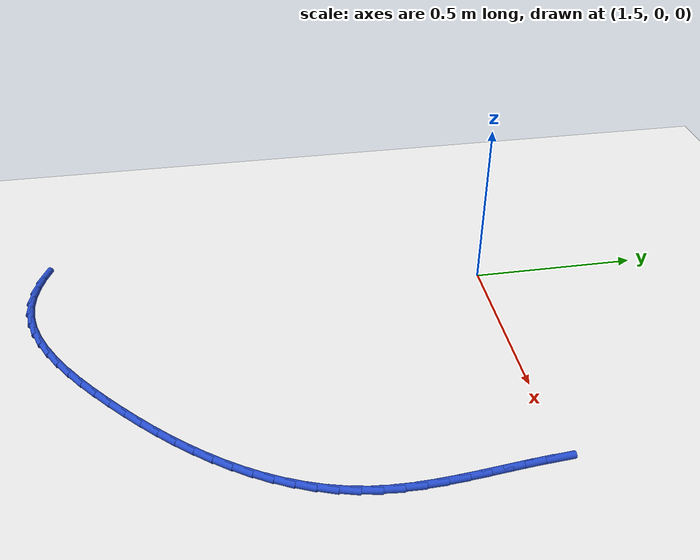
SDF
<sdf version="1.6">
 <world name="default">
  <model name="ground_plane">
   <static>1</static>
   <link name="link">
    <collision name="collision">
     <geometry><plane><normal>0 0 1</normal><size>100 100</size></plane></geometry>
     <surface><friction><ode><mu>100</mu><mu2>50</mu2></ode></friction></surface>
    </collision>
    <visual name="visual">
     <cast_shadows>0</cast_shadows>
     <geometry><plane><normal>0 0 1</normal><size>100 100</size></plane></geometry>
     <material>
      <script><uri>file://media/materials/scripts/gazebo.material</uri><name>Gazebo/WhiteGlow</name></script>
     </material>
    </visual>
   </link>
  </model>
  <model name="line">
   <link name="link_69">
    <pose>2.2679877125991506 -0.011577480466162785 0.01 0 1.57 -1.4976416497448057</pose>
    <collision name="collision">
     <geometry><cylinder><radius>0.01</radius><length>0.08</length></cylinder></geometry>
    </collision>
    <visual name="visual">
     <material>
      <script><name>Gazebo/Blue</name><uri>file://media/materials/scripts/gazebo.material</uri></script>
     </material>
     <geometry><cylinder><radius>0.01</radius><length>0.08</length></cylinder></geometry>
    </visual>
   </link>
   <link name="link_70">
    <pose>2.272039746151987 -0.06686858199269607 0.01 0 1.57 -1.4759544008531393</pose>
    <collision name="collision">
     <geometry><cylinder><radius>0.01</radius><length>0.08</length></cylinder></geometry>
    </collision>
    <visual name="visual">
     <material>
      <script><name>Gazebo/Blue</name><uri>file://media/materials/scripts/gazebo.material</uri></script>
     </material>
     <geometry><cylinder><radius>0.01</radius><length>0.08</length></cylinder></geometry>
    </visual>
   </link>
   <link name="link_71">
    <pose>2.277283311221189 -0.12199012914853248 0.01 0 1.57 -1.4662632966866773</pose>
    <collision name="collision">
     <geometry><cylinder><radius>0.01</radius><length>0.08</length></cylinder></geometry>
    </collision>
    <visual name="visual">
     <material>
      <script><name>Gazebo/Blue</name><uri>file://media/materials/scripts/gazebo.material</uri></script>
     </material>
     <geometry><cylinder><radius>0.01</radius><length>0.08</length></cylinder></geometry>
    </visual>
   </link>
   <link name="link_72">
    <pose>2.28303926705487 -0.17685293311595088 0.01 0 1.57 -1.4686270590977248</pose>
    <collision name="collision">
     <geometry><cylinder><radius>0.01</radius><length>0.08</length></cylinder></geometry>
    </collision>
    <visual name="visual">
     <material>
      <script><name>Gazebo/Blue</name><uri>file://media/materials/scripts/gazebo.material</uri></script>
     </material>
     <geometry><cylinder><radius>0.01</radius><length>0.08</length></cylinder></geometry>
    </visual>
   </link>
   <link name="link_73">
    <pose>2.288628472901146 -0.23136780507723054 0.01 0 1.57 -1.483307358704458</pose>
    <collision name="collision">
     <geometry><cylinder><radius>0.01</radius><length>0.08</length></cylinder></geometry>
    </collision>
    <visual name="visual">
     <material>
      <script><name>Gazebo/Blue</name><uri>file://media/materials/scripts/gazebo.material</uri></script>
     </material>
     <geometry><cylinder><radius>0.01</radius><length>0.08</length></cylinder></geometry>
    </visual>
   </link>
   <link name="link_74">
    <pose>2.2933717880081304 -0.2854455562146482 0.01 0 1.57 -1.5107714711309632</pose>
    <collision name="collision">
     <geometry><cylinder><radius>0.01</radius><length>0.08</length></cylinder></geometry>
    </collision>
    <visual name="visual">
     <material>
      <script><name>Gazebo/Blue</name><uri>file://media/materials/scripts/gazebo.material</uri></script>
     </material>
     <geometry><cylinder><radius>0.01</radius><length>0.08</length></cylinder></geometry>
    </visual>
   </link>
   <link name="link_75">
    <pose>2.2965900716239394 -0.338996997710483 0.01 0 1.57 -1.551641339065466</pose>
    <collision name="collision">
     <geometry><cylinder><radius>0.01</radius><length>0.08</length></cylinder></geometry>
    </collision>
    <visual name="visual">
     <material>
      <script><name>Gazebo/Blue</name><uri>file://media/materials/scripts/gazebo.material</uri></script>
     </material>
     <geometry><cylinder><radius>0.01</radius><length>0.08</length></cylinder></geometry>
    </visual>
   </link>
   <link name="link_76">
    <pose>2.297604182996687 -0.39193294074701357 0.01 0 1.57 1.5350245606710837</pose>
    <collision name="collision">
     <geometry><cylinder><radius>0.01</radius><length>0.08</length></cylinder></geometry>
    </collision>
    <visual name="visual">
     <material>
      <script><name>Gazebo/Blue</name><uri>file://media/materials/scripts/gazebo.material</uri></script>
     </material>
     <geometry><cylinder><radius>0.01</radius><length>0.08</length></cylinder></geometry>
    </visual>
   </link>
   <link name="link_77">
    <pose>2.295734981374488 -0.44416419650651817 0.01 0 1.57 1.4655887855317047</pose>
    <collision name="collision">
     <geometry><cylinder><radius>0.01</radius><length>0.08</length></cylinder></geometry>
    </collision>
    <visual name="visual">
     <material>
      <script><name>Gazebo/Blue</name><uri>file://media/materials/scripts/gazebo.material</uri></script>
     </material>
     <geometry><cylinder><radius>0.01</radius><length>0.08</length></cylinder></geometry>
    </visual>
   </link>
   <link name="link_78">
    <pose>2.2903033260054575 -0.4956015761712761 0.01 0 1.57 1.3839961442291087</pose>
    <collision name="collision">
     <geometry><cylinder><radius>0.01</radius><length>0.08</length></cylinder></geometry>
    </collision>
    <visual name="visual">
     <material>
      <script><name>Gazebo/Blue</name><uri>file://media/materials/scripts/gazebo.material</uri></script>
     </material>
     <geometry><cylinder><radius>0.01</radius><length>0.08</length></cylinder></geometry>
    </visual>
   </link>
   <link name="link_79">
    <pose>2.2807459964190695 -0.5461684681482974 0.01 0 1.57 1.302903133172674</pose>
    <collision name="collision">
     <geometry><cylinder><radius>0.01</radius><length>0.08</length></cylinder></geometry>
    </collision>
    <visual name="visual">
     <material>
      <script><name>Gazebo/Blue</name><uri>file://media/materials/scripts/gazebo.material</uri></script>
     </material>
     <geometry><cylinder><radius>0.01</radius><length>0.08</length></cylinder></geometry>
    </visual>
   </link>
   <link name="link_80">
    <pose>2.2671076911150916 -0.5958542193931708 0.01 0 1.57 1.2270118462953332</pose>
    <collision name="collision">
     <geometry><cylinder><radius>0.01</radius><length>0.08</length></cylinder></geometry>
    </collision>
    <visual name="visual">
     <material>
      <script><name>Gazebo/Blue</name><uri>file://media/materials/scripts/gazebo.material</uri></script>
     </material>
     <geometry><cylinder><radius>0.01</radius><length>0.08</length></cylinder></geometry>
    </visual>
   </link>
   <link name="link_81">
    <pose>2.2496317090352833 -0.6446697247939235 0.01 0 1.57 1.1568218041512126</pose>
    <collision name="collision">
     <geometry><cylinder><radius>0.01</radius><length>0.08</length></cylinder></geometry>
    </collision>
    <visual name="visual">
     <material>
      <script><name>Gazebo/Blue</name><uri>file://media/materials/scripts/gazebo.material</uri></script>
     </material>
     <geometry><cylinder><radius>0.01</radius><length>0.08</length></cylinder></geometry>
    </visual>
   </link>
   <link name="link_82">
    <pose>2.2285614607006656 -0.692625891344812 0.01 0 1.57 1.0925297025288012</pose>
    <collision name="collision">
     <geometry><cylinder><radius>0.01</radius><length>0.08</length></cylinder></geometry>
    </collision>
    <visual name="visual">
     <material>
      <script><name>Gazebo/Blue</name><uri>file://media/materials/scripts/gazebo.material</uri></script>
     </material>
     <geometry><cylinder><radius>0.01</radius><length>0.08</length></cylinder></geometry>
    </visual>
   </link>
   <link name="link_83">
    <pose>2.2041403566322626 -0.7397336260400911 0.01 0 1.57 1.0340969322638478</pose>
    <collision name="collision">
     <geometry><cylinder><radius>0.01</radius><length>0.08</length></cylinder></geometry>
    </collision>
    <visual name="visual">
     <material>
      <script><name>Gazebo/Blue</name><uri>file://media/materials/scripts/gazebo.material</uri></script>
     </material>
     <geometry><cylinder><radius>0.01</radius><length>0.08</length></cylinder></geometry>
    </visual>
   </link>
   <link name="link_84">
    <pose>2.1766118073510934 -0.786003835874017 0.01 0 1.57 0.9813196274996755</pose>
    <collision name="collision">
     <geometry><cylinder><radius>0.01</radius><length>0.08</length></cylinder></geometry>
    </collision>
    <visual name="visual">
     <material>
      <script><name>Gazebo/Blue</name><uri>file://media/materials/scripts/gazebo.material</uri></script>
     </material>
     <geometry><cylinder><radius>0.01</radius><length>0.08</length></cylinder></geometry>
    </visual>
   </link>
   <link name="link_85">
    <pose>2.14621922337818 -0.831447427840846 0.01 0 1.57 0.9338914225657482</pose>
    <collision name="collision">
     <geometry><cylinder><radius>0.01</radius><length>0.08</length></cylinder></geometry>
    </collision>
    <visual name="visual">
     <material>
      <script><name>Gazebo/Blue</name><uri>file://media/materials/scripts/gazebo.material</uri></script>
     </material>
     <geometry><cylinder><radius>0.01</radius><length>0.08</length></cylinder></geometry>
    </visual>
   </link>
   <link name="link_86">
    <pose>2.1132060152345447 -0.8760753089348342 0.01 0 1.57 0.8914535162755093</pose>
    <collision name="collision">
     <geometry><cylinder><radius>0.01</radius><length>0.08</length></cylinder></geometry>
    </collision>
    <visual name="visual">
     <material>
      <script><name>Gazebo/Blue</name><uri>file://media/materials/scripts/gazebo.material</uri></script>
     </material>
     <geometry><cylinder><radius>0.01</radius><length>0.08</length></cylinder></geometry>
    </visual>
   </link>
   <link name="link_87">
    <pose>2.0778155934412066 -0.9198983861502376 0.01 0 1.57 0.8536312752444258</pose>
    <collision name="collision">
     <geometry><cylinder><radius>0.01</radius><length>0.08</length></cylinder></geometry>
    </collision>
    <visual name="visual">
     <material>
      <script><name>Gazebo/Blue</name><uri>file://media/materials/scripts/gazebo.material</uri></script>
     </material>
     <geometry><cylinder><radius>0.01</radius><length>0.08</length></cylinder></geometry>
    </visual>
   </link>
   <link name="link_88">
    <pose>2.0402913685191906 -0.9629275664813113 0.01 0 1.57 0.8200590853208195</pose>
    <collision name="collision">
     <geometry><cylinder><radius>0.01</radius><length>0.08</length></cylinder></geometry>
    </collision>
    <visual name="visual">
     <material>
      <script><name>Gazebo/Blue</name><uri>file://media/materials/scripts/gazebo.material</uri></script>
     </material>
     <geometry><cylinder><radius>0.01</radius><length>0.08</length></cylinder></geometry>
    </visual>
   </link>
   <link name="link_89">
    <pose>2.000876750989515 -1.0051737569223114 0.01 0 1.57 0.7903960547148511</pose>
    <collision name="collision">
     <geometry><cylinder><radius>0.01</radius><length>0.08</length></cylinder></geometry>
    </collision>
    <visual name="visual">
     <material>
      <script><name>Gazebo/Blue</name><uri>file://media/materials/scripts/gazebo.material</uri></script>
     </material>
     <geometry><cylinder><radius>0.01</radius><length>0.08</length></cylinder></geometry>
    </visual>
   </link>
   <link name="link_90">
    <pose>1.959815151373203 -1.0466478644674944 0.01 0 1.57 0.7643351631111397</pose>
    <collision name="collision">
     <geometry><cylinder><radius>0.01</radius><length>0.08</length></cylinder></geometry>
    </collision>
    <visual name="visual">
     <material>
      <script><name>Gazebo/Blue</name><uri>file://media/materials/scripts/gazebo.material</uri></script>
     </material>
     <geometry><cylinder><radius>0.01</radius><length>0.08</length></cylinder></geometry>
    </visual>
   </link>
   <link name="link_91">
    <pose>1.9173499801912746 -1.0873607961111165 0.01 0 1.57 0.7415472661623763</pose>
    <collision name="collision">
     <geometry><cylinder><radius>0.01</radius><length>0.08</length></cylinder></geometry>
    </collision>
    <visual name="visual">
     <material>
      <script><name>Gazebo/Blue</name><uri>file://media/materials/scripts/gazebo.material</uri></script>
     </material>
     <geometry><cylinder><radius>0.01</radius><length>0.08</length></cylinder></geometry>
    </visual>
   </link>
   <link name="link_92">
    <pose>1.8737238096983844 -1.127319350308531 0.01 0 1.57 0.7178521093929394</pose>
    <collision name="collision">
     <geometry><cylinder><radius>0.01</radius><length>0.08</length></cylinder></geometry>
    </collision>
    <visual name="visual">
     <material>
      <script><name>Gazebo/Blue</name><uri>file://media/materials/scripts/gazebo.material</uri></script>
     </material>
     <geometry><cylinder><radius>0.01</radius><length>0.08</length></cylinder></geometry>
    </visual>
   </link>
   <link name="link_93">
    <pose>1.8291253033547683 -1.1662661059457988 0.01 0 1.57 0.6864731464466811</pose>
    <collision name="collision">
     <geometry><cylinder><radius>0.01</radius><length>0.08</length></cylinder></geometry>
    </collision>
    <visual name="visual">
     <material>
      <script><name>Gazebo/Blue</name><uri>file://media/materials/scripts/gazebo.material</uri></script>
     </material>
     <geometry><cylinder><radius>0.01</radius><length>0.08</length></cylinder></geometry>
    </visual>
   </link>
   <link name="link_94">
    <pose>1.7836574196348682 -1.203523581793015 0.01 0 1.57 0.6458756428049988</pose>
    <collision name="collision">
     <geometry><cylinder><radius>0.01</radius><length>0.08</length></cylinder></geometry>
    </collision>
    <visual name="visual">
     <material>
      <script><name>Gazebo/Blue</name><uri>file://media/materials/scripts/gazebo.material</uri></script>
     </material>
     <geometry><cylinder><radius>0.01</radius><length>0.08</length></cylinder></geometry>
    </visual>
   </link>
   <link name="link_95">
    <pose>1.7374154878466508 -1.238376904296788 0.01 0 1.57 0.5946694102458976</pose>
    <collision name="collision">
     <geometry><cylinder><radius>0.01</radius><length>0.08</length></cylinder></geometry>
    </collision>
    <visual name="visual">
     <material>
      <script><name>Gazebo/Blue</name><uri>file://media/materials/scripts/gazebo.material</uri></script>
     </material>
     <geometry><cylinder><radius>0.01</radius><length>0.08</length></cylinder></geometry>
    </visual>
   </link>
   <link name="link_96">
    <pose>1.6904948372980875 -1.270111199903726 0.01 0 1.57 0.5310488411279972</pose>
    <collision name="collision">
     <geometry><cylinder><radius>0.01</radius><length>0.08</length></cylinder></geometry>
    </collision>
    <visual name="visual">
     <material>
      <script><name>Gazebo/Blue</name><uri>file://media/materials/scripts/gazebo.material</uri></script>
     </material>
     <geometry><cylinder><radius>0.01</radius><length>0.08</length></cylinder></geometry>
    </visual>
   </link>
   <link name="link_97">
    <pose>1.6429907972971443 -1.2980115950604356 0.01 0 1.57 0.4528477694062415</pose>
    <collision name="collision">
     <geometry><cylinder><radius>0.01</radius><length>0.08</length></cylinder></geometry>
    </collision>
    <visual name="visual">
     <material>
      <script><name>Gazebo/Blue</name><uri>file://media/materials/scripts/gazebo.material</uri></script>
     </material>
     <geometry><cylinder><radius>0.01</radius><length>0.08</length></cylinder></geometry>
    </visual>
   </link>
   <link name="link_98">
    <pose>1.5949986971517904 -1.3213632162135263 0.01 0 1.57 0.35774945896646004</pose>
    <collision name="collision">
     <geometry><cylinder><radius>0.01</radius><length>0.08</length></cylinder></geometry>
    </collision>
    <visual name="visual">
     <material>
      <script><name>Gazebo/Blue</name><uri>file://media/materials/scripts/gazebo.material</uri></script>
     </material>
     <geometry><cylinder><radius>0.01</radius><length>0.08</length></cylinder></geometry>
    </visual>
   </link>
   <link name="link_99">
    <pose>1.5466138661699937 -1.339451189809605 0.01 0 1.57 0.2437969556951649</pose>
    <collision name="collision">
     <geometry><cylinder><radius>0.01</radius><length>0.08</length></cylinder></geometry>
    </collision>
    <visual name="visual">
     <material>
      <script><name>Gazebo/Blue</name><uri>file://media/materials/scripts/gazebo.material</uri></script>
     </material>
     <geometry><cylinder><radius>0.01</radius><length>0.08</length></cylinder></geometry>
    </visual>
   </link>
   <link name="link_100">
    <pose>1.4979316336597224 -1.3515606422952815 0.01 0 1.57 0.11039645422706254</pose>
    <collision name="collision">
     <geometry><cylinder><radius>0.01</radius><length>0.08</length></cylinder></geometry>
    </collision>
    <visual name="visual">
     <material>
      <script><name>Gazebo/Blue</name><uri>file://media/materials/scripts/gazebo.material</uri></script>
     </material>
     <geometry><cylinder><radius>0.01</radius><length>0.08</length></cylinder></geometry>
    </visual>
   </link>
   <link name="link_101">
    <pose>1.4490471992355398 -1.3569793416732199 0.01 0 1.57 -0.031689918597003104</pose>
    <collision name="collision">
     <geometry><cylinder><radius>0.01</radius><length>0.08</length></cylinder></geometry>
    </collision>
    <visual name="visual">
     <material>
      <script><name>Gazebo/Blue</name><uri>file://media/materials/scripts/gazebo.material</uri></script>
     </material>
     <geometry><cylinder><radius>0.01</radius><length>0.08</length></cylinder></geometry>
    </visual>
   </link>
   <link name="link_102">
    <pose>1.400034623105612 -1.3554256169807803 0.01 0 1.57 -0.15957485812984898</pose>
    <collision name="collision">
     <geometry><cylinder><radius>0.01</radius><length>0.08</length></cylinder></geometry>
    </collision>
    <visual name="visual">
     <material>
      <script><name>Gazebo/Blue</name><uri>file://media/materials/scripts/gazebo.material</uri></script>
     </material>
     <geometry><cylinder><radius>0.01</radius><length>0.08</length></cylinder></geometry>
    </visual>
   </link>
   <link name="link_103">
    <pose>1.3509235947337161 -1.3475215271547187 0.01 0 1.57 -0.2682243411167031</pose>
    <collision name="collision">
     <geometry><cylinder><radius>0.01</radius><length>0.08</length></cylinder></geometry>
    </collision>
    <visual name="visual">
     <material>
      <script><name>Gazebo/Blue</name><uri>file://media/materials/scripts/gazebo.material</uri></script>
     </material>
     <geometry><cylinder><radius>0.01</radius><length>0.08</length></cylinder></geometry>
    </visual>
   </link>
   <link name="link_104">
    <pose>1.301738210381031 -1.3340030517902846 0.01 0 1.57 -0.3575862788785986</pose>
    <collision name="collision">
     <geometry><cylinder><radius>0.01</radius><length>0.08</length></cylinder></geometry>
    </collision>
    <visual name="visual">
     <material>
      <script><name>Gazebo/Blue</name><uri>file://media/materials/scripts/gazebo.material</uri></script>
     </material>
     <geometry><cylinder><radius>0.01</radius><length>0.08</length></cylinder></geometry>
    </visual>
   </link>
  </model>
 </world>
</sdf>
